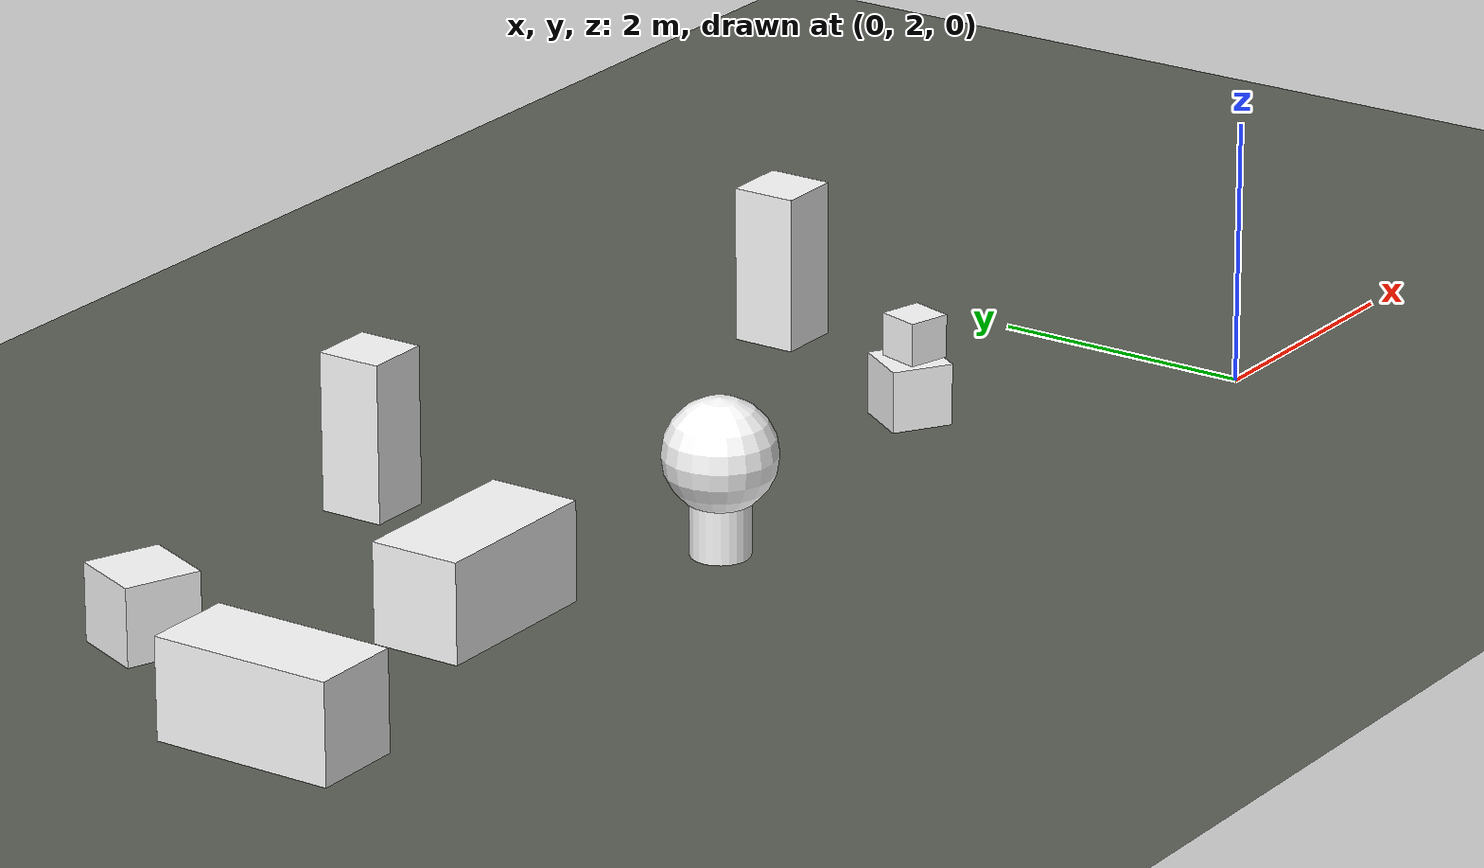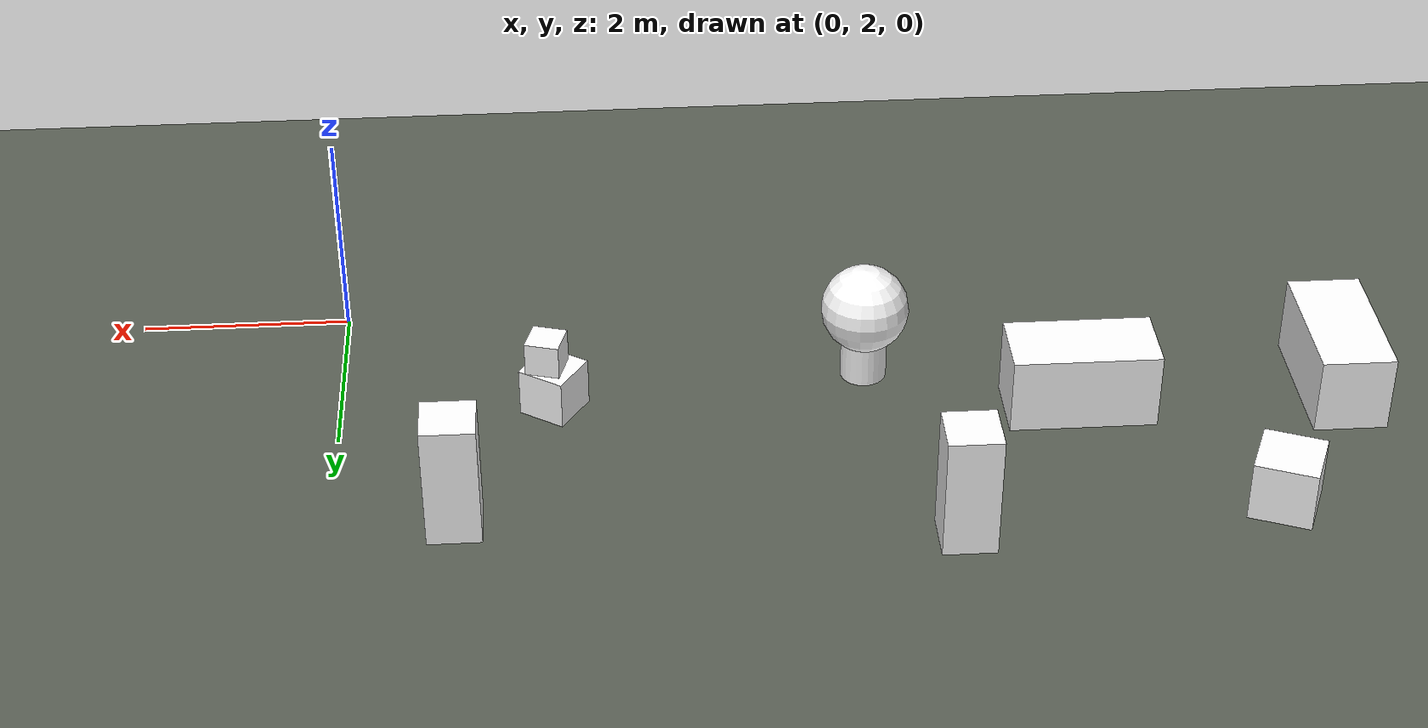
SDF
<sdf version="1.9">
 <world name="office_0">
  <model name="ground_plane">
   <static>true</static>
   <link name="link">
    <collision name="collision">
     <geometry><plane><normal>0 0 1</normal><size>300.000 300.000</size></plane></geometry>
     <surface><friction><ode><mu>1.0</mu><mu2>1.0</mu2></ode></friction></surface>
    </collision>
    <visual name="visual">
     <geometry><plane><normal>0 0 1</normal><size>300.000 300.000</size></plane></geometry>
     <material>
      <ambient>0.350 0.370 0.330 1</ambient>
      <diffuse>0.350 0.370 0.330 1</diffuse>
      <specular>0.08 0.08 0.08 1</specular>
     </material>
    </visual>
   </link>
  </model>
  <model name="desk_14">
   <static>true</static>
   <pose>-6.979 3.892 0.000 0.0000 0.0000 0.0000</pose>
   <link name="link">
    <collision name="c0">
     <pose>0.000 0.000 0.375 0.0000 0.0000 0.0000</pose>
     <geometry><box><size>1.400 0.700 0.750</size></box></geometry>
    </collision>
    <visual name="v0">
     <pose>0.000 0.000 0.375 0.0000 0.0000 0.0000</pose>
     <geometry><box><size>1.400 0.700 0.750</size></box></geometry>
     <material>
      <ambient>1.000 1.000 1.000 1</ambient>
      <diffuse>1.000 1.000 1.000 1</diffuse>
      <specular>0.08 0.08 0.08 1</specular>
      <pbr>
       <metal>
        <albedo_map>model://omnivla_textures/materials/textures/wood_floor.png</albedo_map>
        <roughness>0.85</roughness>
        <metalness>0.0</metalness>
       </metal>
      </pbr>
     </material>
    </visual>
   </link>
  </model>
  <model name="desk_29">
   <static>true</static>
   <pose>-9.477 3.729 0.000 0.0000 0.0000 -1.5708</pose>
   <link name="link">
    <collision name="c0">
     <pose>0.000 0.000 0.375 0.0000 0.0000 0.0000</pose>
     <geometry><box><size>1.400 0.700 0.750</size></box></geometry>
    </collision>
    <visual name="v0">
     <pose>0.000 0.000 0.375 0.0000 0.0000 0.0000</pose>
     <geometry><box><size>1.400 0.700 0.750</size></box></geometry>
     <material>
      <ambient>1.000 1.000 1.000 1</ambient>
      <diffuse>1.000 1.000 1.000 1</diffuse>
      <specular>0.08 0.08 0.08 1</specular>
      <pbr>
       <metal>
        <albedo_map>model://omnivla_textures/materials/textures/wood_floor.png</albedo_map>
        <roughness>0.85</roughness>
        <metalness>0.0</metalness>
       </metal>
      </pbr>
     </material>
    </visual>
   </link>
  </model>
  <model name="cabinet_43">
   <static>true</static>
   <pose>-5.650 5.773 0.000 0.0000 0.0000 -1.5708</pose>
   <link name="link">
    <collision name="c0">
     <pose>0.000 0.000 0.600 0.0000 0.0000 0.0000</pose>
     <geometry><box><size>0.500 0.500 1.200</size></box></geometry>
    </collision>
    <visual name="v0">
     <pose>0.000 0.000 0.600 0.0000 0.0000 0.0000</pose>
     <geometry><box><size>0.500 0.500 1.200</size></box></geometry>
     <material>
      <ambient>1.000 1.000 1.000 1</ambient>
      <diffuse>1.000 1.000 1.000 1</diffuse>
      <specular>0.08 0.08 0.08 1</specular>
      <pbr>
       <metal>
        <albedo_map>model://omnivla_textures/materials/textures/metal.png</albedo_map>
        <roughness>0.85</roughness>
        <metalness>0.0</metalness>
       </metal>
      </pbr>
     </material>
    </visual>
   </link>
  </model>
  <model name="plant_318">
   <static>true</static>
   <pose>-5.004 3.211 0.000 0.0000 0.0000 -1.4607</pose>
   <link name="link">
    <collision name="c0">
     <pose>0.000 0.000 0.200 0.0000 0.0000 0.0000</pose>
     <geometry><cylinder><radius>0.220</radius><length>0.400</length></cylinder></geometry>
    </collision>
    <visual name="v0">
     <pose>0.000 0.000 0.200 0.0000 0.0000 0.0000</pose>
     <geometry><cylinder><radius>0.220</radius><length>0.400</length></cylinder></geometry>
     <material>
      <ambient>1.000 1.000 1.000 1</ambient>
      <diffuse>1.000 1.000 1.000 1</diffuse>
      <specular>0.08 0.08 0.08 1</specular>
      <pbr>
       <metal>
        <albedo_map>model://omnivla_textures/materials/textures/brick_red.png</albedo_map>
        <roughness>0.85</roughness>
        <metalness>0.0</metalness>
       </metal>
      </pbr>
     </material>
    </visual>
    <collision name="c1">
     <pose>0.000 0.000 0.750 0.0000 0.0000 0.0000</pose>
     <geometry><sphere><radius>0.420</radius></sphere></geometry>
    </collision>
    <visual name="v1">
     <pose>0.000 0.000 0.750 0.0000 0.0000 0.0000</pose>
     <geometry><sphere><radius>0.420</radius></sphere></geometry>
     <material>
      <ambient>1.000 1.000 1.000 1</ambient>
      <diffuse>1.000 1.000 1.000 1</diffuse>
      <specular>0.08 0.08 0.08 1</specular>
      <pbr>
       <metal>
        <albedo_map>model://omnivla_textures/materials/textures/leaves.png</albedo_map>
        <roughness>0.85</roughness>
        <metalness>0.0</metalness>
       </metal>
      </pbr>
     </material>
    </visual>
   </link>
  </model>
  <model name="crate_396">
   <static>true</static>
   <pose>-8.582 5.520 0.000 0.0000 0.0000 -1.9634</pose>
   <link name="link">
    <collision name="c0">
     <pose>0.000 0.000 0.291 0.0000 0.0000 0.0000</pose>
     <geometry><box><size>0.583 0.583 0.583</size></box></geometry>
    </collision>
    <visual name="v0">
     <pose>0.000 0.000 0.291 0.0000 0.0000 0.0000</pose>
     <geometry><box><size>0.583 0.583 0.583</size></box></geometry>
     <material>
      <ambient>1.000 1.000 1.000 1</ambient>
      <diffuse>1.000 1.000 1.000 1</diffuse>
      <specular>0.08 0.08 0.08 1</specular>
      <pbr>
       <metal>
        <albedo_map>model://omnivla_textures/materials/textures/cardboard.png</albedo_map>
        <roughness>0.85</roughness>
        <metalness>0.0</metalness>
       </metal>
      </pbr>
     </material>
    </visual>
   </link>
  </model>
  <model name="cabinet_529">
   <static>true</static>
   <pose>-1.108 5.319 0.000 0.0000 0.0000 -1.5708</pose>
   <link name="link">
    <collision name="c0">
     <pose>0.000 0.000 0.600 0.0000 0.0000 0.0000</pose>
     <geometry><box><size>0.500 0.500 1.200</size></box></geometry>
    </collision>
    <visual name="v0">
     <pose>0.000 0.000 0.600 0.0000 0.0000 0.0000</pose>
     <geometry><box><size>0.500 0.500 1.200</size></box></geometry>
     <material>
      <ambient>1.000 1.000 1.000 1</ambient>
      <diffuse>1.000 1.000 1.000 1</diffuse>
      <specular>0.08 0.08 0.08 1</specular>
      <pbr>
       <metal>
        <albedo_map>model://omnivla_textures/materials/textures/metal.png</albedo_map>
        <roughness>0.85</roughness>
        <metalness>0.0</metalness>
       </metal>
      </pbr>
     </material>
    </visual>
   </link>
  </model>
  <model name="crate_753">
   <static>true</static>
   <pose>-2.025 3.572 0.000 0.0000 0.0000 -0.5828</pose>
   <link name="link">
    <collision name="c0">
     <pose>0.000 0.000 0.235 0.0000 0.0000 0.0000</pose>
     <geometry><box><size>0.471 0.471 0.471</size></box></geometry>
    </collision>
    <visual name="v0">
     <pose>0.000 0.000 0.235 0.0000 0.0000 0.0000</pose>
     <geometry><box><size>0.471 0.471 0.471</size></box></geometry>
     <material>
      <ambient>1.000 1.000 1.000 1</ambient>
      <diffuse>1.000 1.000 1.000 1</diffuse>
      <specular>0.08 0.08 0.08 1</specular>
      <pbr>
       <metal>
        <albedo_map>model://omnivla_textures/materials/textures/crate.png</albedo_map>
        <roughness>0.85</roughness>
        <metalness>0.0</metalness>
       </metal>
      </pbr>
     </material>
    </visual>
    <collision name="c1">
     <pose>0.050 0.030 0.635 0.0000 0.0000 0.3000</pose>
     <geometry><box><size>0.329 0.329 0.329</size></box></geometry>
    </collision>
    <visual name="v1">
     <pose>0.050 0.030 0.635 0.0000 0.0000 0.3000</pose>
     <geometry><box><size>0.329 0.329 0.329</size></box></geometry>
     <material>
      <ambient>1.000 1.000 1.000 1</ambient>
      <diffuse>1.000 1.000 1.000 1</diffuse>
      <specular>0.08 0.08 0.08 1</specular>
      <pbr>
       <metal>
        <albedo_map>model://omnivla_textures/materials/textures/cardboard.png</albedo_map>
        <roughness>0.85</roughness>
        <metalness>0.0</metalness>
       </metal>
      </pbr>
     </material>
    </visual>
   </link>
  </model>
 </world>
</sdf>
